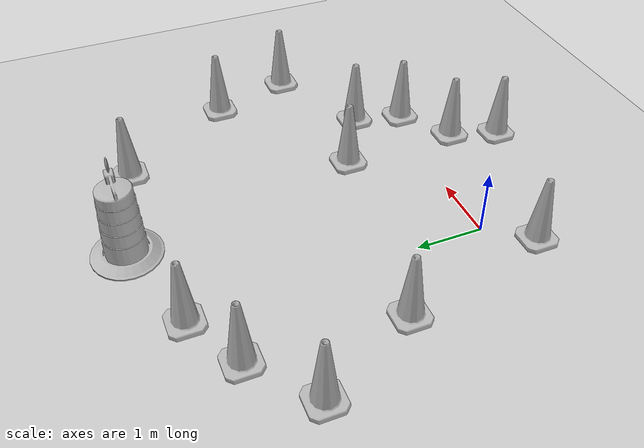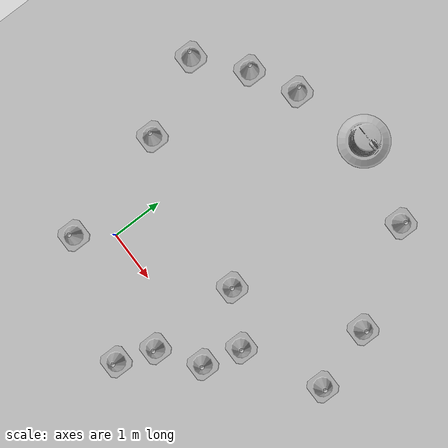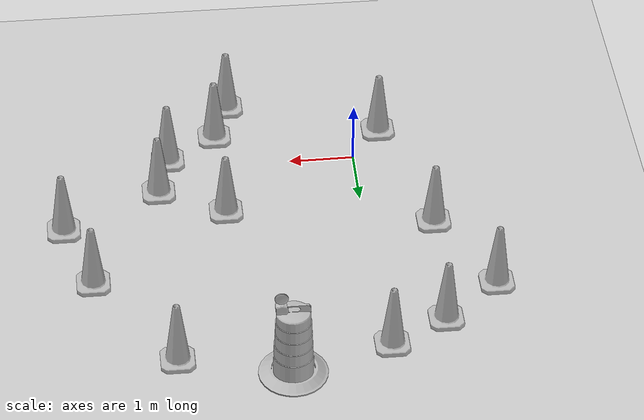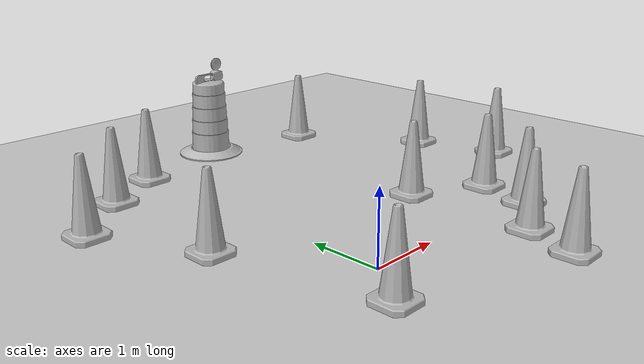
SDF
<sdf version="1.7">
 <world name="default">
  <light name="sun" type="directional">
   <pose>0 0 10 0 -0 0</pose>
   <diffuse>0.8 0.8 0.8 1</diffuse>
   <specular>0.2 0.2 0.2 1</specular>
   <attenuation>
    <range>1000</range>
    <constant>0.9</constant>
    <linear>0.01</linear>
    <quadratic>0.001</quadratic>
   </attenuation>
   <direction>-0.5 0.1 -0.9</direction>
   <spot><inner_angle>0</inner_angle><outer_angle>0</outer_angle><falloff>0</falloff></spot>
  </light>
  <model name="ground_plane">
   <static>1</static>
   <link name="link">
    <collision name="collision">
     <geometry><plane><normal>0 0 1</normal><size>100 100</size></plane></geometry>
     <surface><friction><ode><mu>100</mu><mu2>50</mu2></ode></friction></surface>
    </collision>
    <visual name="visual">
     <cast_shadows>0</cast_shadows>
     <geometry><plane><normal>0 0 1</normal><size>100 100</size></plane></geometry>
     <material>
      <script><uri>file://media/materials/scripts/gazebo.material</uri><name>Gazebo/Grey</name></script>
     </material>
    </visual>
   </link>
  </model>
  <gravity>0 0 -9.8</gravity>
  <magnetic_field>6e-06 2.3e-05 -4.2e-05</magnetic_field>
  <atmosphere type="adiabatic"/>
  <physics type="ode">
   <max_step_size>0.001</max_step_size>
   <real_time_factor>1</real_time_factor>
   <real_time_update_rate>1000</real_time_update_rate>
  </physics>
  <scene><ambient>0.4 0.4 0.4 1</ambient><background>0.7 0.7 0.7 1</background><shadows>1</shadows></scene>
  <audio><device>default</device></audio>
  <spherical_coordinates>
   <surface_model>EARTH_WGS84</surface_model>
   <latitude_deg>0</latitude_deg>
   <longitude_deg>0</longitude_deg>
   <elevation>0</elevation>
   <heading_deg>0</heading_deg>
  </spherical_coordinates>
  <model name="Construction Cone">
   <link name="link">
    <collision name="collision">
     <geometry>
      <mesh><scale>10 10 10</scale><uri>model://construction_cone/meshes/construction_cone.dae</uri></mesh>
     </geometry>
    </collision>
    <visual name="visual">
     <geometry>
      <mesh><scale>10 10 10</scale><uri>model://construction_cone/meshes/construction_cone.dae</uri></mesh>
     </geometry>
    </visual>
    <inertial>
     <inertia><ixx>1</ixx><ixy>0</ixy><ixz>0</ixz><iyy>1</iyy><iyz>0</iyz><izz>1</izz></inertia>
     <mass>1</mass>
    </inertial>
   </link>
   <pose>2.09517 1.14298 -0 0 -0 0.000798</pose>
  </model>
  <model name="Construction Barrel">
   <link name="link">
    <inertial>
     <pose>0 0 0.4 0 -0 0</pose>
     <mass>500</mass>
     <inertia><ixx>51.2096</ixx><iyy>51.2096</iyy><izz>25</izz><ixy>0</ixy><ixz>0</ixz><iyz>0</iyz></inertia>
    </inertial>
    <collision name="collision">
     <geometry><mesh><uri>model://construction_barrel/meshes/construction_barrel.dae</uri></mesh></geometry>
    </collision>
    <visual name="visual">
     <geometry><mesh><uri>model://construction_barrel/meshes/construction_barrel.dae</uri></mesh></geometry>
    </visual>
   </link>
   <pose>1.4132 4.7641 -2e-06 1e-06 8e-06 -2.7e-05</pose>
  </model>
  <model name="Construction Cone_0">
   <link name="link">
    <collision name="collision">
     <geometry>
      <mesh><scale>10 10 10</scale><uri>model://construction_cone/meshes/construction_cone.dae</uri></mesh>
     </geometry>
    </collision>
    <visual name="visual">
     <geometry>
      <mesh><scale>10 10 10</scale><uri>model://construction_cone/meshes/construction_cone.dae</uri></mesh>
     </geometry>
    </visual>
    <inertial>
     <inertia><ixx>1</ixx><ixy>0</ixy><ixz>0</ixz><iyy>1</iyy><iyz>0</iyz><izz>1</izz></inertia>
     <mass>1</mass>
    </inertial>
   </link>
   <pose>-1.05418 1.66268 -0 -0 -0 -0.002413</pose>
  </model>
  <model name="Construction Cone_2">
   <link name="link">
    <collision name="collision">
     <geometry>
      <mesh><scale>10 10 10</scale><uri>model://construction_cone/meshes/construction_cone.dae</uri></mesh>
     </geometry>
    </collision>
    <visual name="visual">
     <geometry>
      <mesh><scale>10 10 10</scale><uri>model://construction_cone/meshes/construction_cone.dae</uri></mesh>
     </geometry>
    </visual>
    <inertial>
     <inertia><ixx>1</ixx><ixy>0</ixy><ixz>0</ixz><iyy>1</iyy><iyz>0</iyz><izz>1</izz></inertia>
     <mass>1</mass>
    </inertial>
   </link>
   <pose>2.13681 -0.687471 -0 0 0 -0.001692</pose>
  </model>
  <model name="Construction Cone_3">
   <link name="link">
    <collision name="collision">
     <geometry>
      <mesh><scale>10 10 10</scale><uri>model://construction_cone/meshes/construction_cone.dae</uri></mesh>
     </geometry>
    </collision>
    <visual name="visual">
     <geometry>
      <mesh><scale>10 10 10</scale><uri>model://construction_cone/meshes/construction_cone.dae</uri></mesh>
     </geometry>
    </visual>
    <inertial>
     <inertia><ixx>1</ixx><ixy>0</ixy><ixz>0</ixz><iyy>1</iyy><iyz>0</iyz><izz>1</izz></inertia>
     <mass>1</mass>
    </inertial>
   </link>
   <pose>2.90849 -0.163415 -0 0 0 -0.004148</pose>
  </model>
  <model name="Construction Cone_4">
   <link name="link">
    <collision name="collision">
     <geometry>
      <mesh><scale>10 10 10</scale><uri>model://construction_cone/meshes/construction_cone.dae</uri></mesh>
     </geometry>
    </collision>
    <visual name="visual">
     <geometry>
      <mesh><scale>10 10 10</scale><uri>model://construction_cone/meshes/construction_cone.dae</uri></mesh>
     </geometry>
    </visual>
    <inertial>
     <inertia><ixx>1</ixx><ixy>0</ixy><ixz>0</ixz><iyy>1</iyy><iyz>0</iyz><izz>1</izz></inertia>
     <mass>1</mass>
    </inertial>
   </link>
   <pose>-1.80418 3.1397 -0 -0 -1e-06 -0.0029</pose>
  </model>
  <model name="Construction Cone_5">
   <link name="link">
    <collision name="collision">
     <geometry>
      <mesh><scale>10 10 10</scale><uri>model://construction_cone/meshes/construction_cone.dae</uri></mesh>
     </geometry>
    </collision>
    <visual name="visual">
     <geometry>
      <mesh><scale>10 10 10</scale><uri>model://construction_cone/meshes/construction_cone.dae</uri></mesh>
     </geometry>
    </visual>
    <inertial>
     <inertia><ixx>1</ixx><ixy>0</ixy><ixz>0</ixz><iyy>1</iyy><iyz>0</iyz><izz>1</izz></inertia>
     <mass>1</mass>
    </inertial>
   </link>
   <pose>-0.941015 3.85989 -1e-06 2e-06 2e-06 0</pose>
  </model>
  <model name="Construction Cone_6">
   <link name="link">
    <collision name="collision">
     <geometry>
      <mesh><scale>10 10 10</scale><uri>model://construction_cone/meshes/construction_cone.dae</uri></mesh>
     </geometry>
    </collision>
    <visual name="visual">
     <geometry>
      <mesh><scale>10 10 10</scale><uri>model://construction_cone/meshes/construction_cone.dae</uri></mesh>
     </geometry>
    </visual>
    <inertial>
     <inertia><ixx>1</ixx><ixy>0</ixy><ixz>0</ixz><iyy>1</iyy><iyz>0</iyz><izz>1</izz></inertia>
     <mass>1</mass>
    </inertial>
   </link>
   <pose>-0.081014 4.33113 -0 0 -0 0</pose>
  </model>
  <model name="Construction Cone_7">
   <link name="link">
    <collision name="collision">
     <geometry>
      <mesh><scale>10 10 10</scale><uri>model://construction_cone/meshes/construction_cone.dae</uri></mesh>
     </geometry>
    </collision>
    <visual name="visual">
     <geometry>
      <mesh><scale>10 10 10</scale><uri>model://construction_cone/meshes/construction_cone.dae</uri></mesh>
     </geometry>
    </visual>
    <inertial>
     <inertia><ixx>1</ixx><ixy>0</ixy><ixz>0</ixz><iyy>1</iyy><iyz>0</iyz><izz>1</izz></inertia>
     <mass>1</mass>
    </inertial>
   </link>
   <pose>3.05775 4.37947 -0 0 -0 0</pose>
  </model>
  <model name="Construction Cone_8">
   <link name="link">
    <collision name="collision">
     <geometry>
      <mesh><scale>10 10 10</scale><uri>model://construction_cone/meshes/construction_cone.dae</uri></mesh>
     </geometry>
    </collision>
    <visual name="visual">
     <geometry>
      <mesh><scale>10 10 10</scale><uri>model://construction_cone/meshes/construction_cone.dae</uri></mesh>
     </geometry>
    </visual>
    <inertial>
     <inertia><ixx>1</ixx><ixy>0</ixy><ixz>0</ixz><iyy>1</iyy><iyz>0</iyz><izz>1</izz></inertia>
     <mass>1</mass>
    </inertial>
   </link>
   <pose>4.20223 2.61082 -3e-06 3e-06 1e-06 -0</pose>
  </model>
  <model name="Construction Cone_9">
   <link name="link">
    <collision name="collision">
     <geometry>
      <mesh><scale>10 10 10</scale><uri>model://construction_cone/meshes/construction_cone.dae</uri></mesh>
     </geometry>
    </collision>
    <visual name="visual">
     <geometry>
      <mesh><scale>10 10 10</scale><uri>model://construction_cone/meshes/construction_cone.dae</uri></mesh>
     </geometry>
    </visual>
    <inertial>
     <inertia><ixx>1</ixx><ixy>0</ixy><ixz>0</ixz><iyy>1</iyy><iyz>0</iyz><izz>1</izz></inertia>
     <mass>1</mass>
    </inertial>
   </link>
   <pose>4.59659 1.36487 -0 0 -0 0</pose>
  </model>
  <model name="Construction Cone_10">
   <link name="link">
    <collision name="collision">
     <geometry>
      <mesh><scale>10 10 10</scale><uri>model://construction_cone/meshes/construction_cone.dae</uri></mesh>
     </geometry>
    </collision>
    <visual name="visual">
     <geometry>
      <mesh><scale>10 10 10</scale><uri>model://construction_cone/meshes/construction_cone.dae</uri></mesh>
     </geometry>
    </visual>
    <inertial>
     <inertia><ixx>1</ixx><ixy>0</ixy><ixz>0</ixz><iyy>1</iyy><iyz>0</iyz><izz>1</izz></inertia>
     <mass>1</mass>
    </inertial>
   </link>
   <pose>3.09894 0.594891 -0 0 -0 0</pose>
  </model>
  <model name="Construction Cone_11">
   <link name="link">
    <collision name="collision">
     <geometry>
      <mesh><scale>10 10 10</scale><uri>model://construction_cone/meshes/construction_cone.dae</uri></mesh>
     </geometry>
    </collision>
    <visual name="visual">
     <geometry>
      <mesh><scale>10 10 10</scale><uri>model://construction_cone/meshes/construction_cone.dae</uri></mesh>
     </geometry>
    </visual>
    <inertial>
     <inertia><ixx>1</ixx><ixy>0</ixy><ixz>0</ixz><iyy>1</iyy><iyz>0</iyz><izz>1</izz></inertia>
     <mass>1</mass>
    </inertial>
   </link>
   <pose>-0.469646 -0.625763 -0 -0 -1e-06 -0.001693</pose>
  </model>
  <model name="Construction Cone_12">
   <link name="link">
    <collision name="collision">
     <geometry>
      <mesh><scale>10 10 10</scale><uri>model://construction_cone/meshes/construction_cone.dae</uri></mesh>
     </geometry>
    </collision>
    <visual name="visual">
     <geometry>
      <mesh><scale>10 10 10</scale><uri>model://construction_cone/meshes/construction_cone.dae</uri></mesh>
     </geometry>
    </visual>
    <inertial>
     <inertia><ixx>1</ixx><ixy>0</ixy><ixz>0</ixz><iyy>1</iyy><iyz>0</iyz><izz>1</izz></inertia>
     <mass>1</mass>
    </inertial>
   </link>
   <pose>1.88938 -1.41811 0 -0 -0 -0</pose>
  </model>
 </world>
</sdf>
